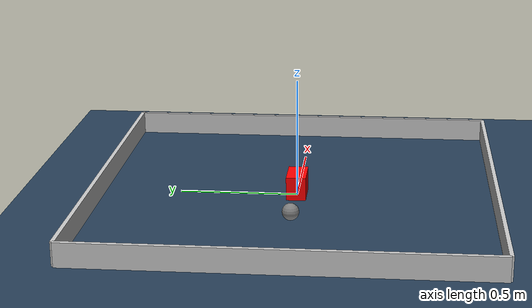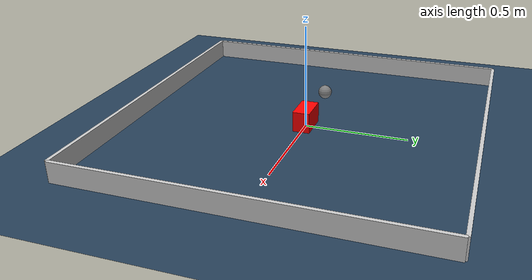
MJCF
<?xml version="1.0" ?>
<!--
  1×-scale variant of nominal_primitive_scene_wide.xml. See
  nominal_primitive_scene_square_1x.xml for the scaling convention.
-->
<mujoco model="nominal_primitive_generation_1x">
  <option cone="elliptic" integrator="RK4" timestep="0.01"/>
  <default>
    <geom density="1"/>
  </default>
  <asset>
    <texture builtin="gradient" height="3072" rgb1="0.3 0.5 0.7" rgb2="0 0 0" type="skybox" width="512"/>
    <texture builtin="checker" height="300" mark="edge" markrgb="0.8 0.8 0.8" name="groundplane" rgb1="0.2 0.3 0.4" rgb2="0.1 0.2 0.3" type="2d" width="300"/>
    <material name="groundplane" reflectance="0.2" texrepeat="5 5" texture="groundplane" texuniform="true"/>
    <material name="robot" rgba="1.0 1.0 0.0 1.0"/>
  </asset>
  <worldbody>
    <light dir="0 0 -1" directional="true" pos="0 0 0.25"/>
    <geom condim="4" friction="0.5 0.005 0.001" material="groundplane" name="floor" size="0 0 0.05" type="plane"/>

    <!-- Robot positioned away from origin for primitive generation -->
    <body name="robot">
      <joint axis="1 0 0" name="joint_x" pos="0 0 0" type="slide"/>
      <joint axis="0 1 0" name="joint_y" pos="0 0 0" type="slide"/>
      <geom condim="4" friction="0.5 0.1 0.1" mass="5.0" name="robot" pos="-0.3333 0.0 0.05" size="0.035 0.035 0.035" type="sphere"/>
    </body>

    <!-- Wide object: 0.075 x 0.0417 m (width > depth) -->
    <body name="obstacle_1_movable">
      <geom condim="4" euler="0 0 0" friction="0 0.1 0.1" mass="0.1" name="obstacle_1_movable" pos="0.0 0.0 0.05" rgba="1 0 0 1" size="0.075 0.0417 0.05" type="box"/>
      <joint type="free"/>
    </body>
    <body name="walls">
      <geom condim="4" name="wall_1" pos="-0.8333 0.0 0.05" rgba="0.8 0.8 0.8 1" size="0.0083 0.8333 0.05" type="box"/>
      <geom condim="4" name="wall_2" pos="0.8333 0.0 0.05" rgba="0.8 0.8 0.8 1" size="0.0083 0.8333 0.05" type="box"/>
      <geom condim="4" name="wall_3" pos="0.0 -0.8333 0.05" rgba="0.8 0.8 0.8 1" size="0.8333 0.0083 0.05" type="box"/>
      <geom condim="4" name="wall_4" pos="0.0 0.8333 0.05" rgba="0.8 0.8 0.8 1" size="0.8333 0.0083 0.05" type="box"/>
    </body>
  </worldbody>

  <actuator>
    <velocity kv="50" ctrlrange="-0.5 0.5" forcerange="-20 20" joint="joint_x" name="actuator_x"/>
    <velocity kv="50" ctrlrange="-0.5 0.5" forcerange="-20 20" joint="joint_y" name="actuator_y"/>
  </actuator>
</mujoco>
